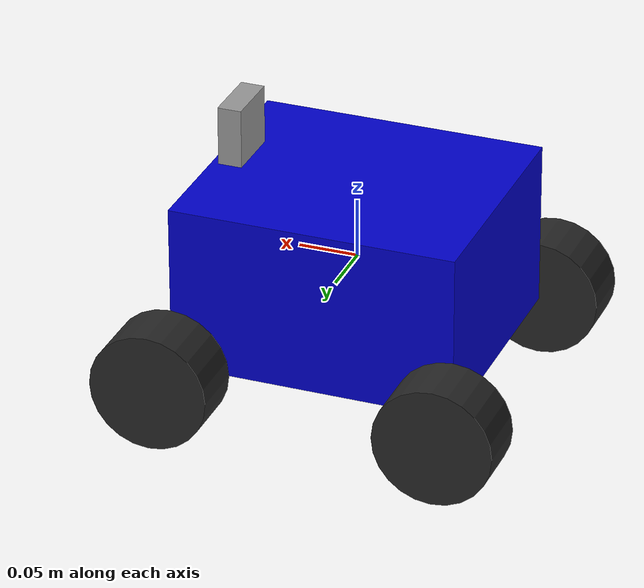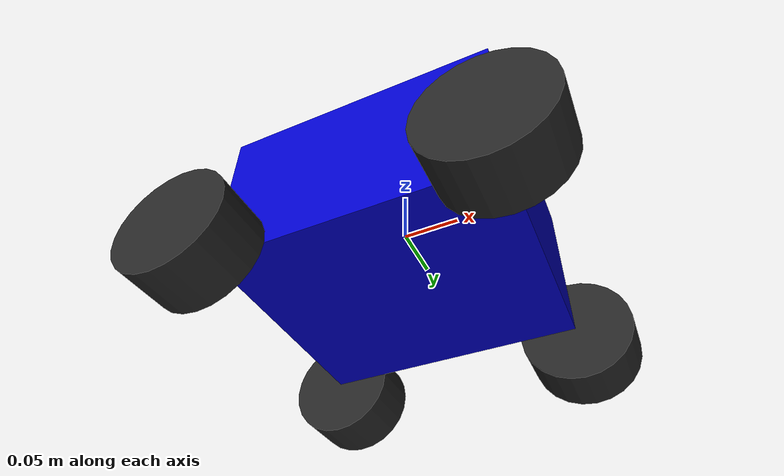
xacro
<?xml version="1.0"?>
<robot xmlns:xacro="http://www.ros.org/wiki/xacro" name="my_bot_desciption">
    <xacro:arg name="use_sim_time" default="true" />
    <!-- Include the Gazebo-specific ros2_control configuration -->
    <xacro:include filename="$(find my_bot_description)/urdf/diffbot.ros2_control.xacro" />

    <!-- Include the rest of your robot's description
         (assuming it's in a file like 'my_bot_parts.urdf' or similar) -->
    <xacro:include filename="$(find my_bot_description)/urdf/my_bot.urdf" />

    <!-- Instantiate the Gazebo ros2_control plugin -->
    <xacro:diffbot_ros2_control name="GazeboSystem" use_sim_time="true" use_mock_hardware="false" />

</robot>

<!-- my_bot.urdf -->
<robot name="my_bot" xmlns:xacro="http://www.ros.org/wiki/xacro">

  <!-- Base link -->
  <link name="base_link">
    <visual>
      <geometry><box size="0.24 0.21 0.14"/></geometry>
      <material name="blue"><color rgba="0 0 0.8 1.0"/></material>
      <origin xyz="0 0 0.0" rpy="0 0 0"/>
    </visual>
    <collision>
      <geometry><box size="0.24 0.21 0.14"/></geometry>
      <origin xyz="0 0 0.0" rpy="0 0 0"/>
    </collision>
    <inertial>
      <origin xyz="0 0 0.0" rpy="0 0 0"/>
      <mass value="0.2"/>
      <inertia ixx="0.01" ixy="0" ixz="0" iyy="0.01" iyz="0" izz="0.02"/>
    </inertial>
  </link>

  <!-- Gazebo base link properties -->
  <gazebo reference="base_link">
    <material>Gazebo/Blue</material>
    <mu1>0.8</mu1>
    <mu2>0.8</mu2>
  </gazebo>

  <!-- Wheels -->
  <link name="left_wheel_back">
    <visual>
      <geometry><cylinder length="0.05" radius="0.05"/></geometry>
      <origin xyz="0 0 0.0" rpy="0 0 0"/>
      <material name="wheel_black"><color rgba="0.15 0.15 0.15 1.0"/></material>
    </visual>
    <collision>
      <geometry><cylinder length="0.05" radius="0.05"/></geometry>
      <origin xyz="0 0 0.0" rpy="0 0 0"/>
    </collision>
    <inertial>
      <origin xyz="0 0 0.0"/>
      <mass value="0.02"/>
      <inertia ixx="0.00013" ixy="0" ixz="0" iyy="0.00023" iyz="0" izz="0.00013"/>
    </inertial>
  </link>

  <gazebo reference="left_wheel_back">
    <material>Gazebo/Black</material>
    <mu1>100.0</mu1>
    <mu2>1000.0</mu2>
  </gazebo>

  <link name="right_wheel_back">
    <visual>
      <geometry><cylinder length="0.05" radius="0.05"/></geometry>
      <origin xyz="0 0 0.0" rpy="0 0 0"/>
      <material name="wheel_black"><color rgba="0.15 0.15 0.15 1.0"/></material>
    </visual>
    <collision>
      <geometry><cylinder length="0.05" radius="0.05"/></geometry>
      <origin xyz="0 0 0.0" rpy="0 0 0"/>
    </collision>
    <inertial>
      <origin xyz="0 0 0.0"/>
      <mass value="0.02"/>
      <inertia ixx="0.00013" ixy="0" ixz="0" iyy="0.00023" iyz="0" izz="0.00013"/>
    </inertial>
  </link>

  <gazebo reference="right_wheel_back">
    <material>Gazebo/Black</material>
    <mu1>100.0</mu1>
    <mu2>1000.0</mu2>
  </gazebo>

  <link name="left_wheel_front">
    <visual>
      <geometry><cylinder length="0.05" radius="0.05"/></geometry>
      <origin xyz="0 0 0.0" rpy="0 0 0"/>
      <material name="wheel_black"><color rgba="0.15 0.15 0.15 1.0"/></material>
    </visual>
    <collision>
      <geometry><cylinder length="0.05" radius="0.05"/></geometry>
      <origin xyz="0 0 0.0" rpy="0 0 0"/>
    </collision>
    <inertial>
      <origin xyz="0 0 0.0"/>
      <mass value="0.02"/>
      <inertia ixx="0.00013" ixy="0" ixz="0" iyy="0.00023" iyz="0" izz="0.00013"/>
    </inertial>
  </link>

  <gazebo reference="left_wheel_front">
    <material>Gazebo/Black</material>
    <mu1>100.0</mu1>
    <mu2>1000.0</mu2>
  </gazebo>

  <link name="right_wheel_front">
    <visual>
      <geometry><cylinder length="0.05" radius="0.05"/></geometry>
      <origin xyz="0 0 0.0" rpy="0 0 0"/>
      <material name="wheel_black"><color rgba="0.15 0.15 0.15 1.0"/></material>
    </visual>
    <collision>
      <geometry><cylinder length="0.05" radius="0.05"/></geometry>
      <origin xyz="0 0 0.0" rpy="0 0 0"/>
    </collision>
    <inertial>
      <origin xyz="0 0 0.0"/>
      <mass value="0.02"/>
      <inertia ixx="0.00013" ixy="0" ixz="0" iyy="0.00023" iyz="0" izz="0.00013"/>
    </inertial>
  </link>

  <gazebo reference="right_wheel_front">
    <material>Gazebo/Black</material>
    <mu1>10.00</mu1>
    <mu2>1000.0</mu2>
  </gazebo>

  <!-- Wheel joints -->
  <joint name="left_wheel_back_joint" type="continuous">
    <parent link="base_link"/>
    <child link="left_wheel_back"/>
    <origin xyz="-0.12 0.13 -0.07" rpy="-1.5707 0 0"/>
    <axis xyz="0 0 1"/>
  </joint>

  <joint name="right_wheel_back_joint" type="continuous">
    <parent link="base_link"/>
    <child link="right_wheel_back"/>
    <origin xyz="-0.12 -0.13 -0.07" rpy="1.5707 0 0"/>
    <axis xyz="0 0 -1"/>
  </joint>

  <joint name="left_wheel_front_joint" type="continuous">
    <parent link="base_link"/>
    <child link="left_wheel_front"/>
    <origin xyz="0.12 0.13 -0.07" rpy="-1.5707 0 0"/>
    <axis xyz="0 0 1"/>
  </joint>

  <joint name="right_wheel_front_joint" type="continuous">
    <parent link="base_link"/>
    <child link="right_wheel_front"/>
    <origin xyz="0.12 -0.13 -0.07" rpy="1.5707 0 0"/>
    <axis xyz="0 0 -1"/>
  </joint>

  <link name="camera_link">
    <visual>
      <geometry><box size="0.02 0.05 0.05"/></geometry>
      <material name="gray"/>
    </visual>
  </link>

  <joint name="camera_joint" type="fixed">
    <parent link="base_link"/>
    <child link="camera_link"/>
    <origin xyz="0.1 0 0.1" rpy="0 0 0"/> </joint>

  <link name="camera_link_optical"></link>
  <joint name="camera_optical_joint" type="fixed">
    <origin xyz="0 0 0" rpy="${-pi/2} 0 ${-pi/2}" />
    <parent link="camera_link" />
    <child link="camera_link_optical" />
  </joint>

  <gazebo reference="camera_link">
    <sensor name="rgbd_camera" type="depth">
      <update_rate>30</update_rate>
      <camera>
        <horizontal_fov>1.047</horizontal_fov>
        <image>
          <width>640</width>
          <height>480</height>
          <format>R8G8B8</format>
        </image>
        <clip>
          <near>0.1</near>
          <far>100</far>
        </clip>
      </camera>

      <plugin name="camera_controller" filename="libgazebo_ros_camera.so">
        <frame_name>camera_link_optical</frame_name>

        <image_topic_name>rgb/image_raw</image_topic_name>
        <camera_info_topic_name>rgb/camera_info</camera_info_topic_name>

        <depth_image_topic_name>depth/image_raw</depth_image_topic_name>
        <depth_image_camera_info_topic_name>depth/camera_info</depth_image_camera_info_topic_name>
        <depth_image_format>R_FLOAT32</depth_image_format>

        <point_cloud_topic_name>depth/points</point_cloud_topic_name>
      </plugin>
    </sensor>
  </gazebo>
  <!-- IMU -->
  <gazebo reference="base_link">
    <sensor name="imu_sensor" type="imu">
      <always_on>true</always_on>
      <update_rate>50</update_rate>
      <plugin name="imu_plugin" filename="libgazebo_ros_imu_sensor.so">
        <ros><namespace>/</namespace><remapping>~/out:=imu</remapping></ros>
        <frame_name>base_link</frame_name>
      </plugin>
    </sensor>
  <!-- GPS -->
    <sensor name="gps_sensor" type="gps">
      <always_on>true</always_on>
      <update_rate>1.0</update_rate>
      <plugin name="gps_plugin" filename="libgazebo_ros_gps_sensor.so">
        <ros><namespace>/</namespace><remapping>~/out:=gps</remapping></ros>
        <frame_name>base_link</frame_name>
      </plugin>
    </sensor>
  </gazebo>

  <gazebo>
    <plugin filename="libgazebo_ros2_control.so" name="gazebo_ros2_control">
      <parameters>$(find my_bot_description)/config/my_bot_controllers.yaml</parameters>
    </plugin>
  </gazebo>

</robot>
